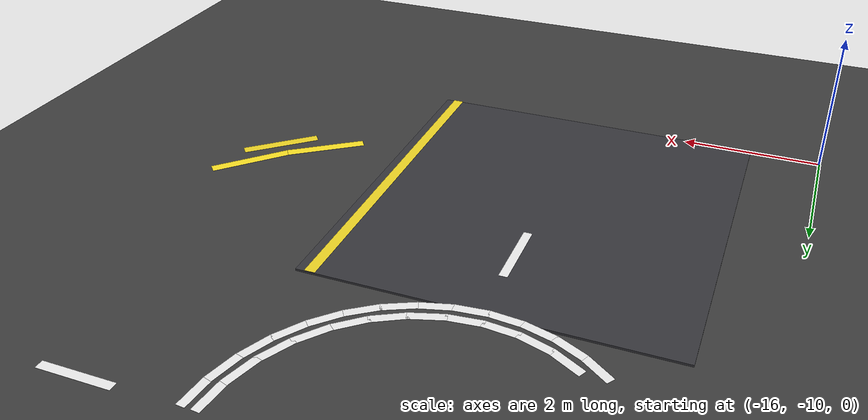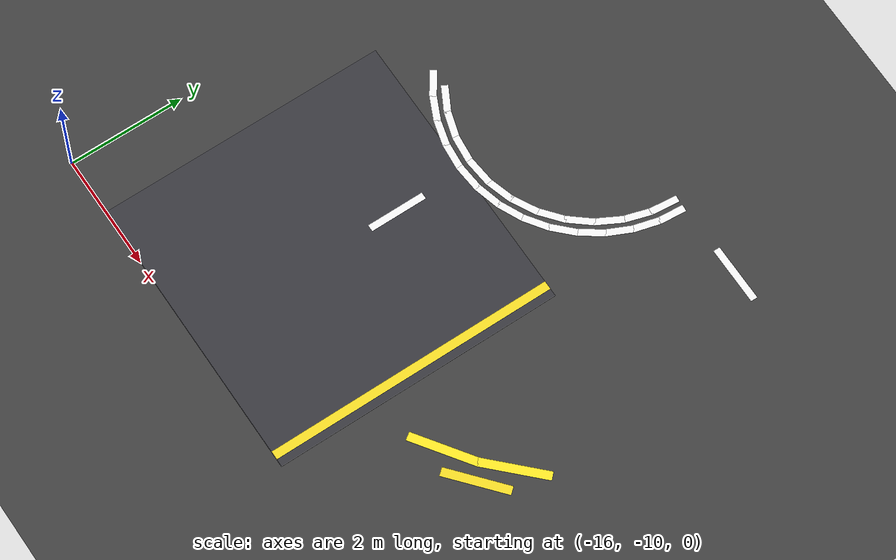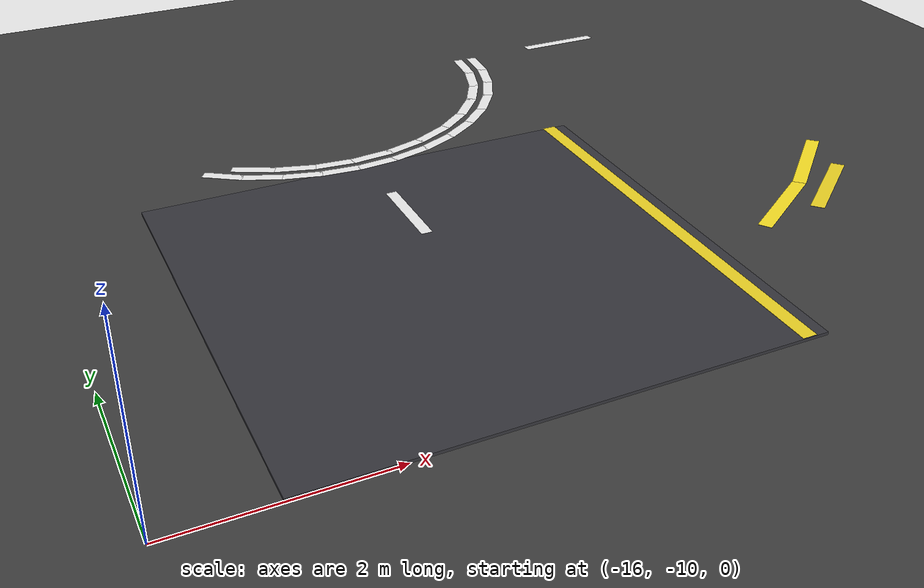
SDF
<sdf version="1.7">
 <world name="compact_city">
  <model name="ground_plane">
   <static>1</static>
   <pose>0 0 0.01 0 -0 0</pose>
   <link name="link">
    <collision name="collision">
     <geometry><plane><normal>0 0 1</normal><size>200 200</size></plane></geometry>
    </collision>
    <visual name="visual">
     <geometry><plane><normal>0 0 1</normal><size>200 200</size></plane></geometry>
     <material>
      <ambient>0.2 0.2 0.2 1</ambient>
      <diffuse>0.25 0.25 0.25 1</diffuse>
      <specular>0.1 0.1 0.1 1</specular>
     </material>
    </visual>
   </link>
  </model>
  <model name="road_tile_57">
   <static>1</static>
   <pose>-12.5 -7.5 0.015 0 -0 1.5708</pose>
   <link name="link">
    <collision name="collision"><geometry><box><size>5 5 0.03</size></box></geometry></collision>
    <visual name="visual">
     <geometry><box><size>5 5 0.03</size></box></geometry>
     <material>
      <ambient>0.18 0.18 0.2 1</ambient>
      <diffuse>0.22 0.22 0.24 1</diffuse>
      <specular>0.1 0.1 0.1 1</specular>
     </material>
    </visual>
   </link>
  </model>
  <model name="el_168">
   <static>1</static>
   <pose>-10.2 -7.5 0.038 0 -0 1.5708</pose>
   <link name="link">
    <visual name="v">
     <geometry><box><size>5 0.15 0.002</size></box></geometry>
     <material><ambient>0.9 0.8 0.1 1</ambient><diffuse>0.95 0.85 0.15 1</diffuse></material>
    </visual>
   </link>
  </model>
  <model name="ld_22">
   <static>1</static>
   <pose>-12.5000 -6.2500 0.038 0 -0 1.5708</pose>
   <link name="link">
    <visual name="v">
     <geometry><box><size>1 0.12 0.002</size></box></geometry>
     <material><ambient>1 1 1 1</ambient><diffuse>0.95 0.95 0.95 1</diffuse></material>
    </visual>
   </link>
  </model>
  <model name="ld_105">
   <static>1</static>
   <pose>-8.7500 -2.5000 0.038 0 0 0</pose>
   <link name="link">
    <visual name="v">
     <geometry><box><size>1 0.12 0.002</size></box></geometry>
     <material><ambient>1 1 1 1</ambient><diffuse>0.95 0.95 0.95 1</diffuse></material>
    </visual>
   </link>
  </model>
  <model name="rr_663">
   <static>1</static>
   <pose>-13.6742 -4.5484 0.038 0 0 -0.490885</pose>
   <link name="link">
    <visual name="v">
     <geometry><box><size>0.486949 0.12 0.002</size></box></geometry>
     <material><ambient>1 1 1 1</ambient><diffuse>0.95 0.95 0.95 1</diffuse></material>
    </visual>
   </link>
  </model>
  <model name="rr_664">
   <static>1</static>
   <pose>-13.2577 -4.721 0.038 0 0 -0.294485</pose>
   <link name="link">
    <visual name="v">
     <geometry><box><size>0.486949 0.12 0.002</size></box></geometry>
     <material><ambient>1 1 1 1</ambient><diffuse>0.95 0.95 0.95 1</diffuse></material>
    </visual>
   </link>
  </model>
  <model name="rr_665">
   <static>1</static>
   <pose>-12.8154 -4.8089 0.038 0 0 -0.098185</pose>
   <link name="link">
    <visual name="v">
     <geometry><box><size>0.486949 0.12 0.002</size></box></geometry>
     <material><ambient>1 1 1 1</ambient><diffuse>0.95 0.95 0.95 1</diffuse></material>
    </visual>
   </link>
  </model>
  <model name="rr_666">
   <static>1</static>
   <pose>-12.3646 -4.8089 0.038 0 -0 0.098215</pose>
   <link name="link">
    <visual name="v">
     <geometry><box><size>0.486949 0.12 0.002</size></box></geometry>
     <material><ambient>1 1 1 1</ambient><diffuse>0.95 0.95 0.95 1</diffuse></material>
    </visual>
   </link>
  </model>
  <model name="rr_667">
   <static>1</static>
   <pose>-11.9223 -4.721 0.038 0 -0 0.294515</pose>
   <link name="link">
    <visual name="v">
     <geometry><box><size>0.486949 0.12 0.002</size></box></geometry>
     <material><ambient>1 1 1 1</ambient><diffuse>0.95 0.95 0.95 1</diffuse></material>
    </visual>
   </link>
  </model>
  <model name="rr_668">
   <static>1</static>
   <pose>-11.5058 -4.5484 0.038 0 -0 0.490915</pose>
   <link name="link">
    <visual name="v">
     <geometry><box><size>0.486949 0.12 0.002</size></box></geometry>
     <material><ambient>1 1 1 1</ambient><diffuse>0.95 0.95 0.95 1</diffuse></material>
    </visual>
   </link>
  </model>
  <model name="rr_669">
   <static>1</static>
   <pose>-11.1309 -4.2979 0.038 0 -0 0.687215</pose>
   <link name="link">
    <visual name="v">
     <geometry><box><size>0.486949 0.12 0.002</size></box></geometry>
     <material><ambient>1 1 1 1</ambient><diffuse>0.95 0.95 0.95 1</diffuse></material>
    </visual>
   </link>
  </model>
  <model name="rr_670">
   <static>1</static>
   <pose>-10.8121 -3.9791 0.038 0 -0 0.883615</pose>
   <link name="link">
    <visual name="v">
     <geometry><box><size>0.486949 0.12 0.002</size></box></geometry>
     <material><ambient>1 1 1 1</ambient><diffuse>0.95 0.95 0.95 1</diffuse></material>
    </visual>
   </link>
  </model>
  <model name="rr_671">
   <static>1</static>
   <pose>-10.5616 -3.6042 0.038 0 -0 1.07991</pose>
   <link name="link">
    <visual name="v">
     <geometry><box><size>0.486949 0.12 0.002</size></box></geometry>
     <material><ambient>1 1 1 1</ambient><diffuse>0.95 0.95 0.95 1</diffuse></material>
    </visual>
   </link>
  </model>
  <model name="rr_672">
   <static>1</static>
   <pose>-10.389 -3.1877 0.038 0 -0 1.27632</pose>
   <link name="link">
    <visual name="v">
     <geometry><box><size>0.486949 0.12 0.002</size></box></geometry>
     <material><ambient>1 1 1 1</ambient><diffuse>0.95 0.95 0.95 1</diffuse></material>
    </visual>
   </link>
  </model>
  <model name="rr_673">
   <static>1</static>
   <pose>-10.3011 -2.7454 0.038 0 -0 1.47262</pose>
   <link name="link">
    <visual name="v">
     <geometry><box><size>0.486949 0.12 0.002</size></box></geometry>
     <material><ambient>1 1 1 1</ambient><diffuse>0.95 0.95 0.95 1</diffuse></material>
    </visual>
   </link>
  </model>
  <model name="ro_708">
   <static>1</static>
   <pose>-8.1738 -7.6908 0.038 0 -0 0.706815</pose>
   <link name="link">
    <visual name="v">
     <geometry><box><size>1.1204 0.15 0.002</size></box></geometry>
     <material><ambient>0.9 0.8 0.1 1</ambient><diffuse>0.95 0.85 0.15 1</diffuse></material>
    </visual>
   </link>
  </model>
  <model name="ra_ring_524">
   <static>1</static>
   <pose>-14.0185 -4.5601 0.038 0 0 -0.6109</pose>
   <link name="link">
    <visual name="visual">
     <geometry><box><size>0.455779 0.12 0.002</size></box></geometry>
     <material><ambient>1 1 1 1</ambient><diffuse>0.95 0.95 0.95 1</diffuse></material>
    </visual>
   </link>
  </model>
  <model name="ra_ring_525">
   <static>1</static>
   <pose>-13.6425 -4.7771 0.038 0 0 -0.4363</pose>
   <link name="link">
    <visual name="visual">
     <geometry><box><size>0.455779 0.12 0.002</size></box></geometry>
     <material><ambient>1 1 1 1</ambient><diffuse>0.95 0.95 0.95 1</diffuse></material>
    </visual>
   </link>
  </model>
  <model name="ra_ring_526">
   <static>1</static>
   <pose>-13.2346 -4.9256 0.038 0 0 -0.2618</pose>
   <link name="link">
    <visual name="visual">
     <geometry><box><size>0.455779 0.12 0.002</size></box></geometry>
     <material><ambient>1 1 1 1</ambient><diffuse>0.95 0.95 0.95 1</diffuse></material>
    </visual>
   </link>
  </model>
  <model name="ra_ring_527">
   <static>1</static>
   <pose>-12.8071 -5.001 0.038 0 0 -0.0873</pose>
   <link name="link">
    <visual name="visual">
     <geometry><box><size>0.455779 0.12 0.002</size></box></geometry>
     <material><ambient>1 1 1 1</ambient><diffuse>0.95 0.95 0.95 1</diffuse></material>
    </visual>
   </link>
  </model>
  <model name="ra_ring_528">
   <static>1</static>
   <pose>-12.3729 -5.001 0.038 0 -0 0.0873</pose>
   <link name="link">
    <visual name="visual">
     <geometry><box><size>0.455779 0.12 0.002</size></box></geometry>
     <material><ambient>1 1 1 1</ambient><diffuse>0.95 0.95 0.95 1</diffuse></material>
    </visual>
   </link>
  </model>
  <model name="ra_ring_529">
   <static>1</static>
   <pose>-11.9454 -4.9256 0.038 0 -0 0.2618</pose>
   <link name="link">
    <visual name="visual">
     <geometry><box><size>0.455779 0.12 0.002</size></box></geometry>
     <material><ambient>1 1 1 1</ambient><diffuse>0.95 0.95 0.95 1</diffuse></material>
    </visual>
   </link>
  </model>
  <model name="ra_ring_530">
   <static>1</static>
   <pose>-11.5375 -4.7771 0.038 0 -0 0.4363</pose>
   <link name="link">
    <visual name="visual">
     <geometry><box><size>0.455779 0.12 0.002</size></box></geometry>
     <material><ambient>1 1 1 1</ambient><diffuse>0.95 0.95 0.95 1</diffuse></material>
    </visual>
   </link>
  </model>
  <model name="ra_ring_531">
   <static>1</static>
   <pose>-11.1615 -4.5601 0.038 0 -0 0.6109</pose>
   <link name="link">
    <visual name="visual">
     <geometry><box><size>0.455779 0.12 0.002</size></box></geometry>
     <material><ambient>1 1 1 1</ambient><diffuse>0.95 0.95 0.95 1</diffuse></material>
    </visual>
   </link>
  </model>
  <model name="ra_ring_532">
   <static>1</static>
   <pose>-10.829 -4.281 0.038 0 -0 0.7854</pose>
   <link name="link">
    <visual name="visual">
     <geometry><box><size>0.455779 0.12 0.002</size></box></geometry>
     <material><ambient>1 1 1 1</ambient><diffuse>0.95 0.95 0.95 1</diffuse></material>
    </visual>
   </link>
  </model>
  <model name="ra_ring_533">
   <static>1</static>
   <pose>-10.5499 -3.9485 0.038 0 -0 0.9599</pose>
   <link name="link">
    <visual name="visual">
     <geometry><box><size>0.455779 0.12 0.002</size></box></geometry>
     <material><ambient>1 1 1 1</ambient><diffuse>0.95 0.95 0.95 1</diffuse></material>
    </visual>
   </link>
  </model>
  <model name="ra_ring_534">
   <static>1</static>
   <pose>-10.3329 -3.5725 0.038 0 -0 1.1345</pose>
   <link name="link">
    <visual name="visual">
     <geometry><box><size>0.455779 0.12 0.002</size></box></geometry>
     <material><ambient>1 1 1 1</ambient><diffuse>0.95 0.95 0.95 1</diffuse></material>
    </visual>
   </link>
  </model>
  <model name="ra_ring_535">
   <static>1</static>
   <pose>-10.1844 -3.1646 0.038 0 -0 1.309</pose>
   <link name="link">
    <visual name="visual">
     <geometry><box><size>0.455779 0.12 0.002</size></box></geometry>
     <material><ambient>1 1 1 1</ambient><diffuse>0.95 0.95 0.95 1</diffuse></material>
    </visual>
   </link>
  </model>
  <model name="ra_ring_536">
   <static>1</static>
   <pose>-10.109 -2.7371 0.038 0 -0 1.4835</pose>
   <link name="link">
    <visual name="visual">
     <geometry><box><size>0.455779 0.12 0.002</size></box></geometry>
     <material><ambient>1 1 1 1</ambient><diffuse>0.95 0.95 0.95 1</diffuse></material>
    </visual>
   </link>
  </model>
  <model name="ra_outer_567">
   <static>1</static>
   <pose>-8.8759 -7.8242 0.038 0 -0 0.6109</pose>
   <link name="link">
    <visual name="visual">
     <geometry><box><size>1.15302 0.15 0.002</size></box></geometry>
     <material><ambient>0.95 0.85 0.1 1</ambient><diffuse>1 0.9 0.15 1</diffuse></material>
    </visual>
   </link>
  </model>
  <model name="ra_outer_568">
   <static>1</static>
   <pose>-8.0113 -7.0987 0.038 0 -0 0.7854</pose>
   <link name="link">
    <visual name="visual">
     <geometry><box><size>1.15302 0.15 0.002</size></box></geometry>
     <material><ambient>0.95 0.85 0.1 1</ambient><diffuse>1 0.9 0.15 1</diffuse></material>
    </visual>
   </link>
  </model>
 </world>
</sdf>
